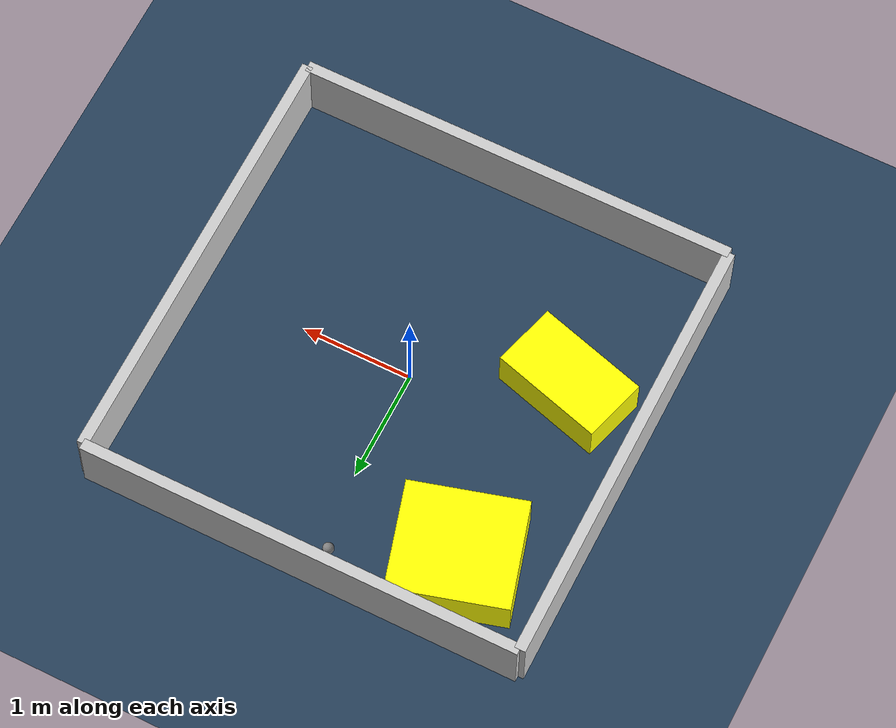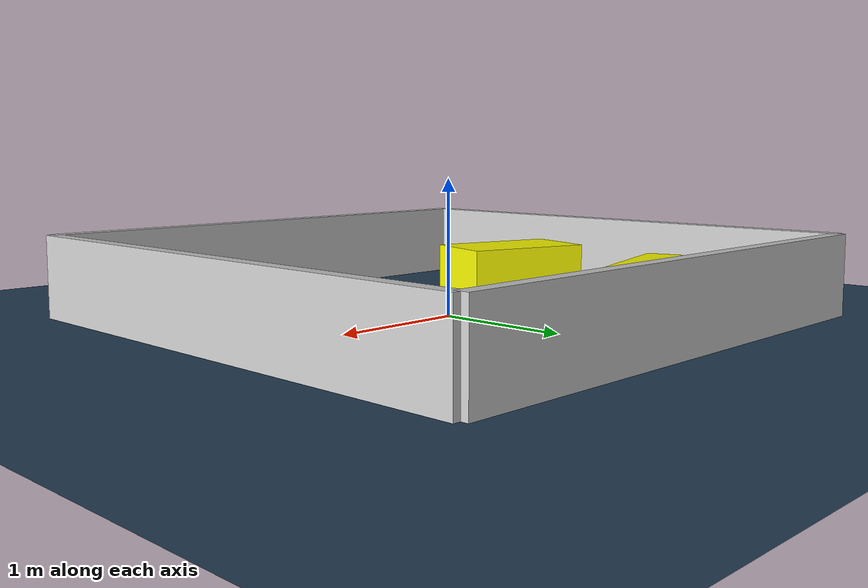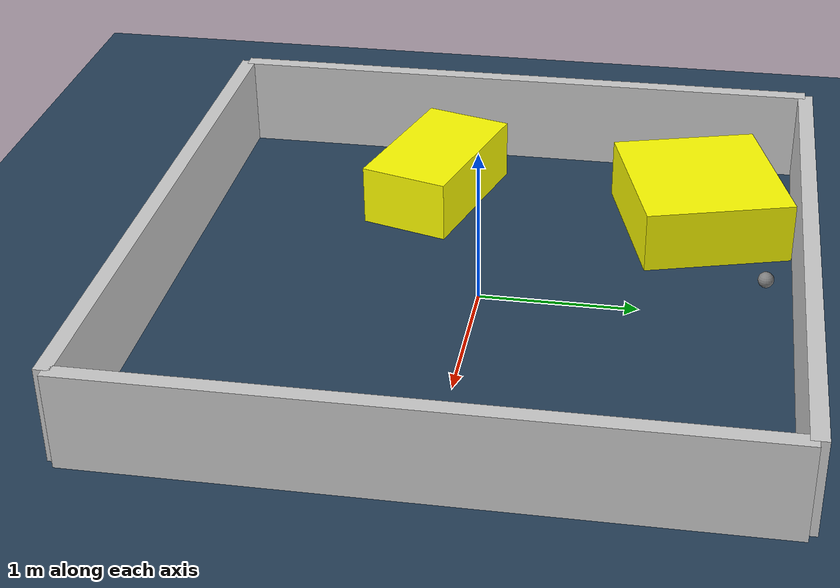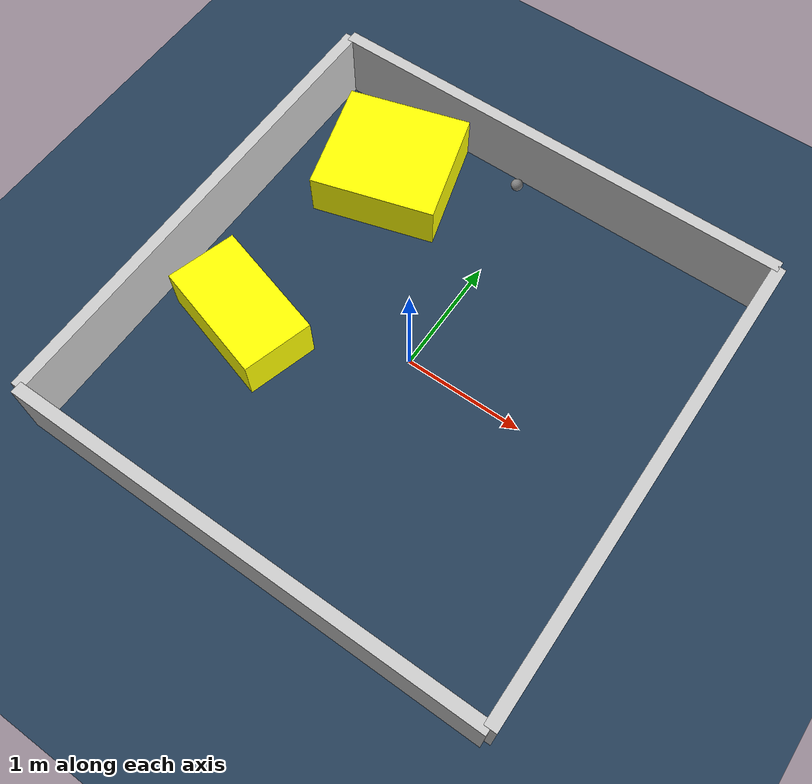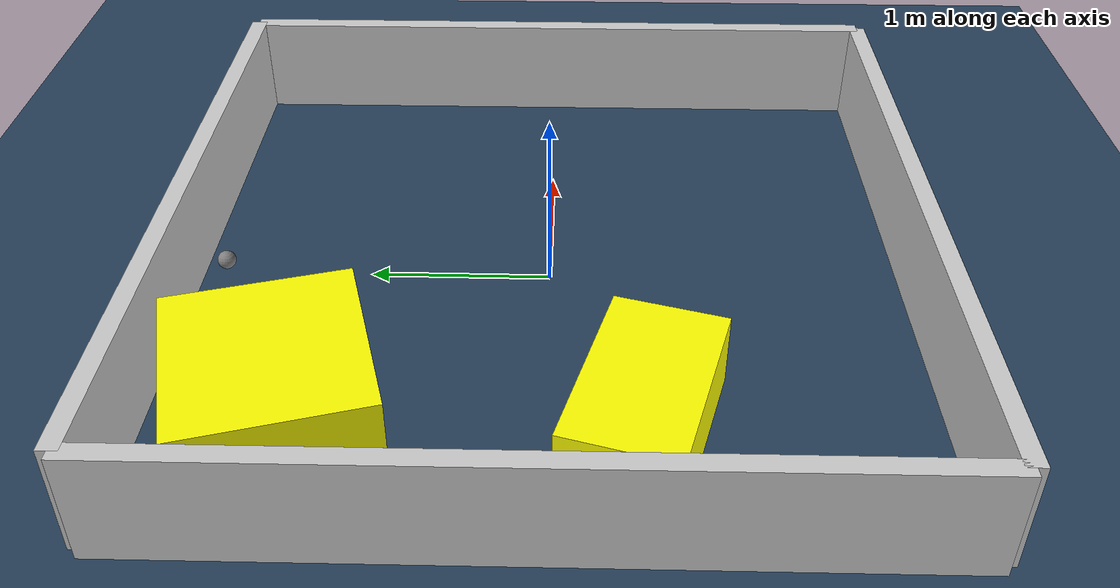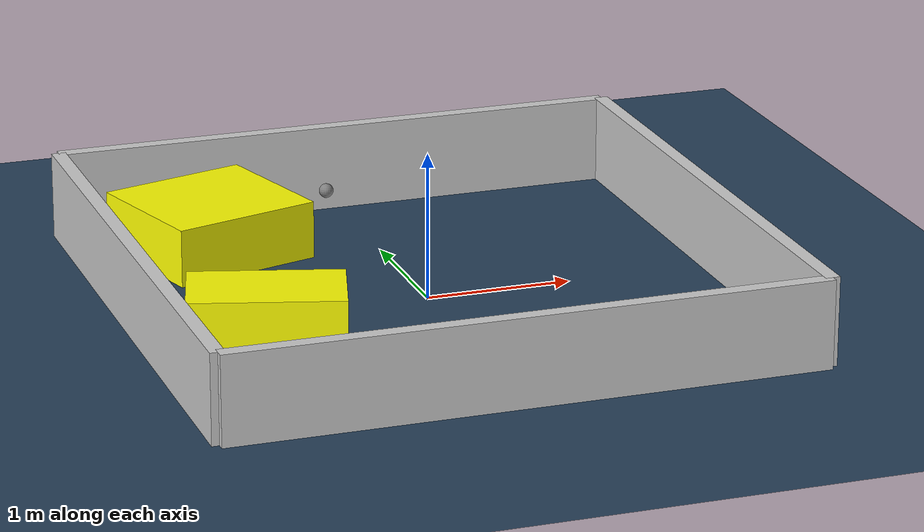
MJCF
<?xml version="1.0" ?>
<mujoco model="generated_environment">
  <option timestep="0.01" integrator="RK4" cone="elliptic"/>
  <default>
    <geom density="1"/>
  </default>
  <asset>
    <texture builtin="gradient" height="3072" rgb1="0.3 0.5 0.7" rgb2="0 0 0" type="skybox" width="512"/>
    <texture builtin="checker" height="300" mark="edge" markrgb="0.8 0.8 0.8" name="groundplane" rgb1="0.2 0.3 0.4" rgb2="0.1 0.2 0.3" type="2d" width="300"/>
    <material name="groundplane" reflectance="0.2" texrepeat="5 5" texture="groundplane" texuniform="true"/>
    <material name="robot" rgba="0.0 1.0 0.0 1"/>
  </asset>
  <worldbody>
    <light dir="0 0 -1" directional="true" pos="0 0 1.5"/>
    <geom condim="4" friction="1.0 0.005 0.001" material="groundplane" name="floor" size="0 0 0.05" type="plane"/>
    <body name="walls">
      <geom name="wall_1" condim="4" pos="-2.0 0.0 0.3" rgba="0.800000011920929 0.800000011920929 0.800000011920929 1.0" size="0.05 2.0 0.3" type="box"/>
      <geom name="wall_2" condim="4" pos="2.0 0.0 0.3" rgba="0.800000011920929 0.800000011920929 0.800000011920929 1.0" size="0.05 2.0 0.3" type="box"/>
      <geom name="wall_3" condim="4" pos="0.0 -2.0 0.3" rgba="0.800000011920929 0.800000011920929 0.800000011920929 1.0" size="2.0 0.05 0.3" type="box"/>
      <geom name="wall_4" condim="4" pos="0.0 2.0 0.3" rgba="0.800000011920929 0.800000011920929 0.800000011920929 1.0" size="2.0 0.05 0.3" type="box"/>
    </body>
    <body name="robot">
      <joint name="joint_x" type="slide" pos="0 0 0" axis="1 0 0"/>
      <joint name="joint_y" type="slide" pos="0 0 0" axis="0 1 0"/>
      <geom name="robot" type="sphere" pos="-0.14644166403557168 1.7677911193692877 0.2" size="0.05" mass="5." friction="1.0 0.005 0.0001" condim="4"/>
      <site name="sensor_ball"/>
    </body>
    <body name="obstacle_1_movable">
      <geom name="obstacle_1_movable" condim="4" pos="-1.2489891584247674 -0.48000752872349506 0.2" euler="0 0 253.8011903695769" friction="1.0 0.005 0.001" rgba="1 1 0 1" size="0.29783999730085187 0.5146992180520688 0.2" type="box" mass="0.1"/>
      <joint type="free"/>
    </body>
    <body name="obstacle_2_movable">
      <geom name="obstacle_2_movable" condim="4" pos="-1.114248273705641 1.3304510125843287 0.2" euler="0 0 196.08882414692226" friction="1.0 0.005 0.001" rgba="1 1 0 1" size="0.5260718599429941 0.4891372189141458 0.2" type="box" mass="0.1"/>
      <joint type="free"/>
    </body>
  </worldbody>
  <actuator>
    <motor name="actuator_x" joint="joint_x" gear="1" ctrlrange="-1 1"/>
    <motor name="actuator_y" joint="joint_y" gear="1" ctrlrange="-1 1"/>
  </actuator>
</mujoco>
